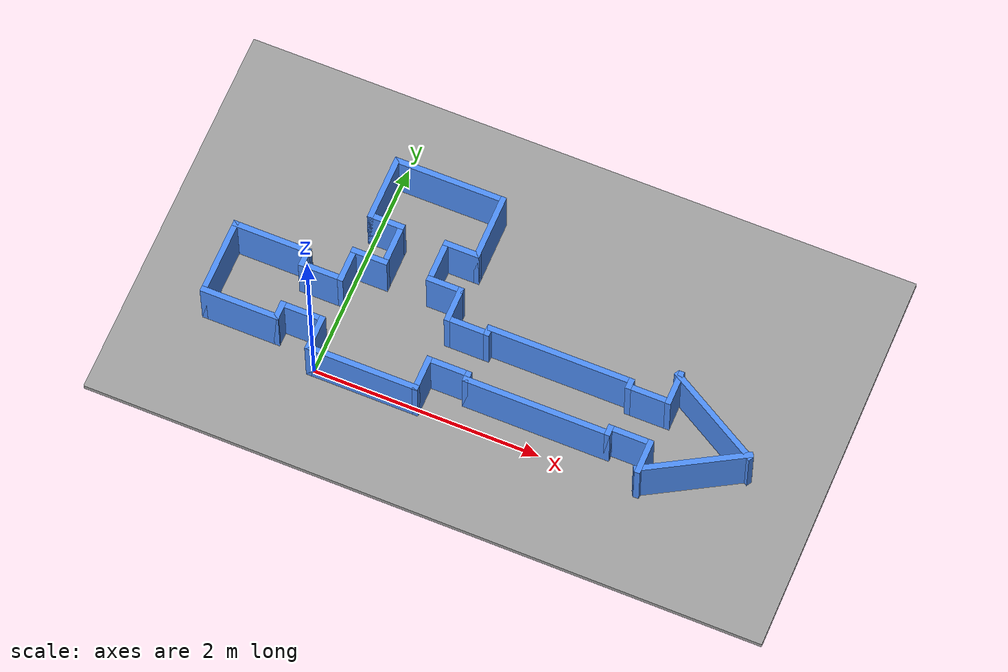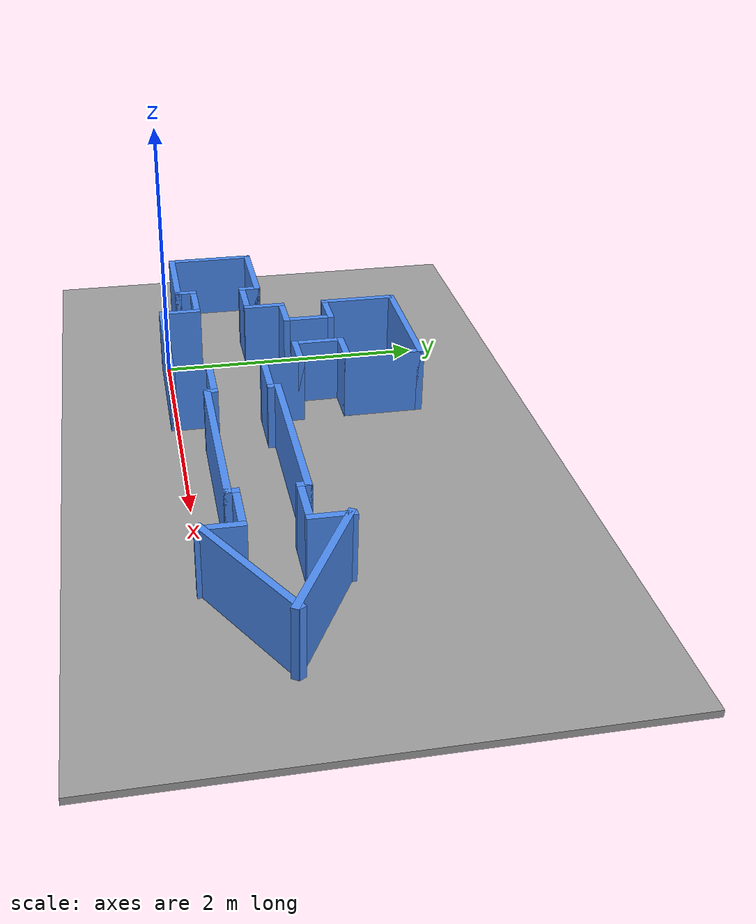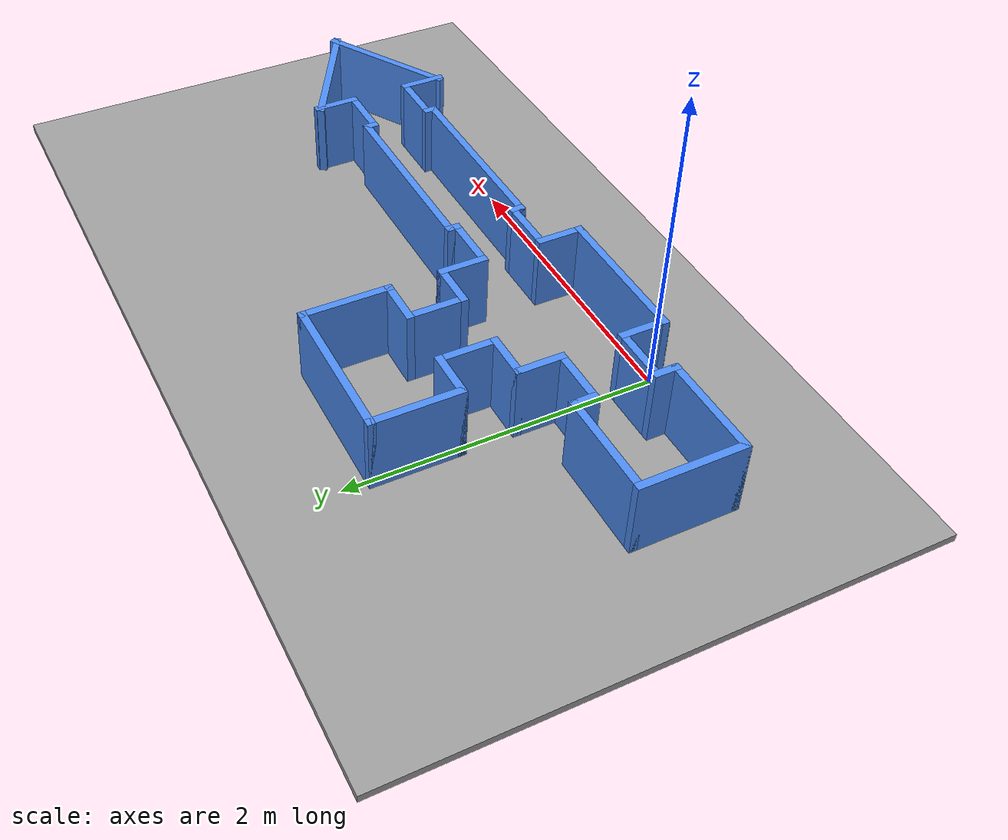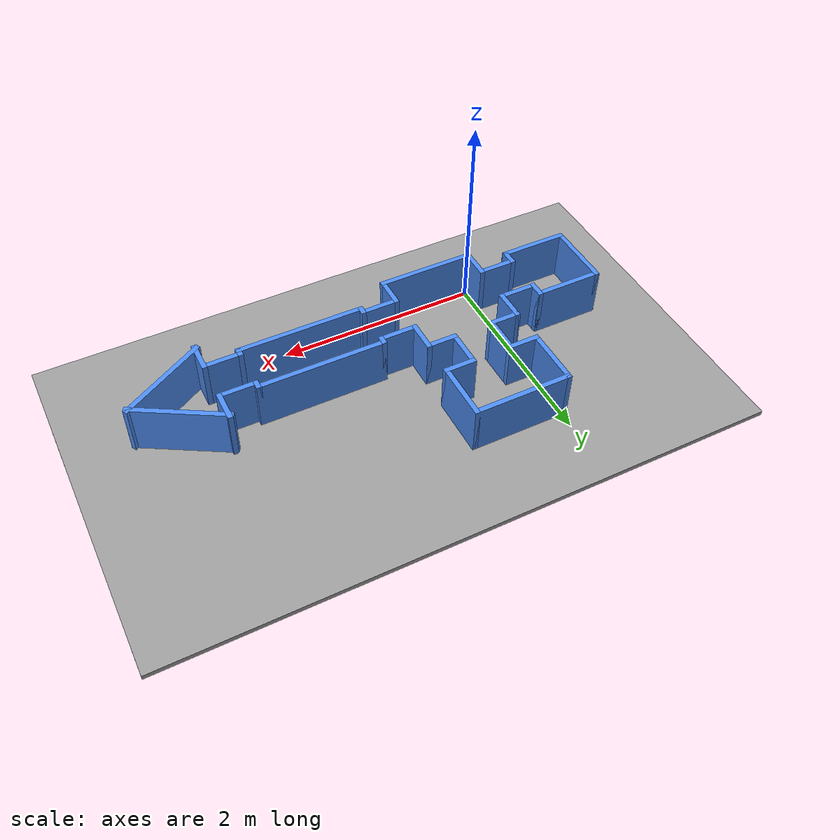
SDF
<sdf version="1.9">
 <world name="combined_rooms">
  <physics name="room_physics" type="ignored">
   <max_step_size>0.001</max_step_size>
   <real_time_factor>1.0</real_time_factor>
  </physics>
  <plugin filename="gz-sim-physics-system" name="gz::sim::systems::Physics"/>
  <plugin filename="gz-sim-user-commands-system" name="gz::sim::systems::UserCommands"/>
  <plugin filename="gz-sim-scene-broadcaster-system" name="gz::sim::systems::SceneBroadcaster"/>
  <plugin filename="gz-sim-sensors-system" name="gz::sim::systems::Sensors">
   <render_engine>ogre2</render_engine>
  </plugin>
  <gravity>0 0 -9.8</gravity>
  <scene><ambient>0.7 0.7 0.7 1</ambient><background>0.8 0.85 0.9 1</background><shadows>true</shadows></scene>
  <light type="directional" name="sun">
   <pose>1.5 0.9 5 0 0 0</pose>
   <diffuse>0.9 0.9 0.9 1</diffuse>
   <specular>0.2 0.2 0.2 1</specular>
   <direction>-0.5 0.2 -0.9</direction>
  </light>
  <model name="ground">
   <static>true</static>
   <link name="ground_link">
    <pose>1.3 0.9 -0.025 0 0 0</pose>
    <collision name="ground_collision"><geometry><box><size>6.0 3.5 0.05</size></box></geometry></collision>
    <visual name="ground_visual">
     <geometry><box><size>6.0 3.5 0.05</size></box></geometry>
     <material><ambient>0.5 0.5 0.5 1</ambient><diffuse>0.62 0.62 0.62 1</diffuse></material>
    </visual>
   </link>
  </model>
  <model name="connected_room_walls">
   <static>true</static>
   <link name="small_square_0">
    <pose>-0.7000 0.1250 0.25 0 0 0.000000</pose>
    <collision name="collision"><geometry><box><size>0.7000 0.05 0.5</size></box></geometry></collision>
    <visual name="visual">
     <geometry><box><size>0.7000 0.05 0.5</size></box></geometry>
     <material><ambient>0.25 0.45 0.85 1</ambient><diffuse>0.30 0.55 0.95 1</diffuse></material>
    </visual>
   </link>
   <link name="small_square_1a">
    <pose>-0.3750 0.1875 0.25 0 0 1.570796</pose>
    <collision name="collision"><geometry><box><size>0.1750 0.05 0.5</size></box></geometry></collision>
    <visual name="visual">
     <geometry><box><size>0.1750 0.05 0.5</size></box></geometry>
     <material><ambient>0.25 0.45 0.85 1</ambient><diffuse>0.30 0.55 0.95 1</diffuse></material>
    </visual>
   </link>
   <link name="small_square_1b">
    <pose>-0.3750 0.7125 0.25 0 0 1.570796</pose>
    <collision name="collision"><geometry><box><size>0.1750 0.05 0.5</size></box></geometry></collision>
    <visual name="visual">
     <geometry><box><size>0.1750 0.05 0.5</size></box></geometry>
     <material><ambient>0.25 0.45 0.85 1</ambient><diffuse>0.30 0.55 0.95 1</diffuse></material>
    </visual>
   </link>
   <link name="small_square_2">
    <pose>-0.7000 0.7750 0.25 0 0 3.141593</pose>
    <collision name="collision"><geometry><box><size>0.7000 0.05 0.5</size></box></geometry></collision>
    <visual name="visual">
     <geometry><box><size>0.7000 0.05 0.5</size></box></geometry>
     <material><ambient>0.25 0.45 0.85 1</ambient><diffuse>0.30 0.55 0.95 1</diffuse></material>
    </visual>
   </link>
   <link name="small_square_3">
    <pose>-1.0250 0.4500 0.25 0 0 -1.570796</pose>
    <collision name="collision"><geometry><box><size>0.7000 0.05 0.5</size></box></geometry></collision>
    <visual name="visual">
     <geometry><box><size>0.7000 0.05 0.5</size></box></geometry>
     <material><ambient>0.25 0.45 0.85 1</ambient><diffuse>0.30 0.55 0.95 1</diffuse></material>
    </visual>
   </link>
   <link name="large_square_0">
    <pose>0.4500 -0.0250 0.25 0 0 0.000000</pose>
    <collision name="collision"><geometry><box><size>1.0000 0.05 0.5</size></box></geometry></collision>
    <visual name="visual">
     <geometry><box><size>1.0000 0.05 0.5</size></box></geometry>
     <material><ambient>0.25 0.45 0.85 1</ambient><diffuse>0.30 0.55 0.95 1</diffuse></material>
    </visual>
   </link>
   <link name="large_square_1a">
    <pose>0.9250 0.1125 0.25 0 0 1.570796</pose>
    <collision name="collision"><geometry><box><size>0.3250 0.05 0.5</size></box></geometry></collision>
    <visual name="visual">
     <geometry><box><size>0.3250 0.05 0.5</size></box></geometry>
     <material><ambient>0.25 0.45 0.85 1</ambient><diffuse>0.30 0.55 0.95 1</diffuse></material>
    </visual>
   </link>
   <link name="large_square_1b">
    <pose>0.9250 0.7875 0.25 0 0 1.570796</pose>
    <collision name="collision"><geometry><box><size>0.3250 0.05 0.5</size></box></geometry></collision>
    <visual name="visual">
     <geometry><box><size>0.3250 0.05 0.5</size></box></geometry>
     <material><ambient>0.25 0.45 0.85 1</ambient><diffuse>0.30 0.55 0.95 1</diffuse></material>
    </visual>
   </link>
   <link name="large_square_2a">
    <pose>0.7875 0.9250 0.25 0 0 3.141593</pose>
    <collision name="collision"><geometry><box><size>0.3250 0.05 0.5</size></box></geometry></collision>
    <visual name="visual">
     <geometry><box><size>0.3250 0.05 0.5</size></box></geometry>
     <material><ambient>0.25 0.45 0.85 1</ambient><diffuse>0.30 0.55 0.95 1</diffuse></material>
    </visual>
   </link>
   <link name="large_square_2b">
    <pose>0.1125 0.9250 0.25 0 0 3.141593</pose>
    <collision name="collision"><geometry><box><size>0.3250 0.05 0.5</size></box></geometry></collision>
    <visual name="visual">
     <geometry><box><size>0.3250 0.05 0.5</size></box></geometry>
     <material><ambient>0.25 0.45 0.85 1</ambient><diffuse>0.30 0.55 0.95 1</diffuse></material>
    </visual>
   </link>
   <link name="large_square_3a">
    <pose>-0.0250 0.7875 0.25 0 0 -1.570796</pose>
    <collision name="collision"><geometry><box><size>0.3250 0.05 0.5</size></box></geometry></collision>
    <visual name="visual">
     <geometry><box><size>0.3250 0.05 0.5</size></box></geometry>
     <material><ambient>0.25 0.45 0.85 1</ambient><diffuse>0.30 0.55 0.95 1</diffuse></material>
    </visual>
   </link>
   <link name="large_square_3b">
    <pose>-0.0250 0.1125 0.25 0 0 -1.570796</pose>
    <collision name="collision"><geometry><box><size>0.3250 0.05 0.5</size></box></geometry></collision>
    <visual name="visual">
     <geometry><box><size>0.3250 0.05 0.5</size></box></geometry>
     <material><ambient>0.25 0.45 0.85 1</ambient><diffuse>0.30 0.55 0.95 1</diffuse></material>
    </visual>
   </link>
   <link name="rectangle_0a">
    <pose>0.1125 1.2750 0.25 0 0 0.000000</pose>
    <collision name="collision"><geometry><box><size>0.3250 0.05 0.5</size></box></geometry></collision>
    <visual name="visual">
     <geometry><box><size>0.3250 0.05 0.5</size></box></geometry>
     <material><ambient>0.25 0.45 0.85 1</ambient><diffuse>0.30 0.55 0.95 1</diffuse></material>
    </visual>
   </link>
   <link name="rectangle_0b">
    <pose>0.7875 1.2750 0.25 0 0 0.000000</pose>
    <collision name="collision"><geometry><box><size>0.3250 0.05 0.5</size></box></geometry></collision>
    <visual name="visual">
     <geometry><box><size>0.3250 0.05 0.5</size></box></geometry>
     <material><ambient>0.25 0.45 0.85 1</ambient><diffuse>0.30 0.55 0.95 1</diffuse></material>
    </visual>
   </link>
   <link name="rectangle_1">
    <pose>0.9250 1.5500 0.25 0 0 1.570796</pose>
    <collision name="collision"><geometry><box><size>0.6000 0.05 0.5</size></box></geometry></collision>
    <visual name="visual">
     <geometry><box><size>0.6000 0.05 0.5</size></box></geometry>
     <material><ambient>0.25 0.45 0.85 1</ambient><diffuse>0.30 0.55 0.95 1</diffuse></material>
    </visual>
   </link>
   <link name="rectangle_2">
    <pose>0.4500 1.8250 0.25 0 0 3.141593</pose>
    <collision name="collision"><geometry><box><size>1.0000 0.05 0.5</size></box></geometry></collision>
    <visual name="visual">
     <geometry><box><size>1.0000 0.05 0.5</size></box></geometry>
     <material><ambient>0.25 0.45 0.85 1</ambient><diffuse>0.30 0.55 0.95 1</diffuse></material>
    </visual>
   </link>
   <link name="rectangle_3">
    <pose>-0.0250 1.5500 0.25 0 0 -1.570796</pose>
    <collision name="collision"><geometry><box><size>0.6000 0.05 0.5</size></box></geometry></collision>
    <visual name="visual">
     <geometry><box><size>0.6000 0.05 0.5</size></box></geometry>
     <material><ambient>0.25 0.45 0.85 1</ambient><diffuse>0.30 0.55 0.95 1</diffuse></material>
    </visual>
   </link>
   <link name="hallway_0">
    <pose>1.9000 0.2000 0.25 0 0 0.000000</pose>
    <collision name="collision"><geometry><box><size>1.3000 0.05 0.5</size></box></geometry></collision>
    <visual name="visual">
     <geometry><box><size>1.3000 0.05 0.5</size></box></geometry>
     <material><ambient>0.25 0.45 0.85 1</ambient><diffuse>0.30 0.55 0.95 1</diffuse></material>
    </visual>
   </link>
   <link name="hallway_1a">
    <pose>2.5250 0.2250 0.25 0 0 1.570796</pose>
    <collision name="collision"><geometry><box><size>0.1000 0.05 0.5</size></box></geometry></collision>
    <visual name="visual">
     <geometry><box><size>0.1000 0.05 0.5</size></box></geometry>
     <material><ambient>0.25 0.45 0.85 1</ambient><diffuse>0.30 0.55 0.95 1</diffuse></material>
    </visual>
   </link>
   <link name="hallway_1b">
    <pose>2.5250 0.6750 0.25 0 0 1.570796</pose>
    <collision name="collision"><geometry><box><size>0.1000 0.05 0.5</size></box></geometry></collision>
    <visual name="visual">
     <geometry><box><size>0.1000 0.05 0.5</size></box></geometry>
     <material><ambient>0.25 0.45 0.85 1</ambient><diffuse>0.30 0.55 0.95 1</diffuse></material>
    </visual>
   </link>
   <link name="hallway_2">
    <pose>1.9000 0.7000 0.25 0 0 3.141593</pose>
    <collision name="collision"><geometry><box><size>1.3000 0.05 0.5</size></box></geometry></collision>
    <visual name="visual">
     <geometry><box><size>1.3000 0.05 0.5</size></box></geometry>
     <material><ambient>0.25 0.45 0.85 1</ambient><diffuse>0.30 0.55 0.95 1</diffuse></material>
    </visual>
   </link>
   <link name="hallway_3a">
    <pose>1.2750 0.6750 0.25 0 0 -1.570796</pose>
    <collision name="collision"><geometry><box><size>0.1000 0.05 0.5</size></box></geometry></collision>
    <visual name="visual">
     <geometry><box><size>0.1000 0.05 0.5</size></box></geometry>
     <material><ambient>0.25 0.45 0.85 1</ambient><diffuse>0.30 0.55 0.95 1</diffuse></material>
    </visual>
   </link>
   <link name="hallway_3b">
    <pose>1.2750 0.2250 0.25 0 0 -1.570796</pose>
    <collision name="collision"><geometry><box><size>0.1000 0.05 0.5</size></box></geometry></collision>
    <visual name="visual">
     <geometry><box><size>0.1000 0.05 0.5</size></box></geometry>
     <material><ambient>0.25 0.45 0.85 1</ambient><diffuse>0.30 0.55 0.95 1</diffuse></material>
    </visual>
   </link>
   <link name="triangle_0">
    <pose>3.2589 0.2283 0.25 0 0 0.523599</pose>
    <collision name="collision"><geometry><box><size>0.9800 0.05 0.5</size></box></geometry></collision>
    <visual name="visual">
     <geometry><box><size>0.9800 0.05 0.5</size></box></geometry>
     <material><ambient>0.25 0.45 0.85 1</ambient><diffuse>0.30 0.55 0.95 1</diffuse></material>
    </visual>
   </link>
   <link name="triangle_1">
    <pose>3.2589 0.6717 0.25 0 0 2.617994</pose>
    <collision name="collision"><geometry><box><size>0.9800 0.05 0.5</size></box></geometry></collision>
    <visual name="visual">
     <geometry><box><size>0.9800 0.05 0.5</size></box></geometry>
     <material><ambient>0.25 0.45 0.85 1</ambient><diffuse>0.30 0.55 0.95 1</diffuse></material>
    </visual>
   </link>
   <link name="triangle_2a">
    <pose>2.8750 0.7825 0.25 0 0 -1.570796</pose>
    <collision name="collision"><geometry><box><size>0.3150 0.05 0.5</size></box></geometry></collision>
    <visual name="visual">
     <geometry><box><size>0.3150 0.05 0.5</size></box></geometry>
     <material><ambient>0.25 0.45 0.85 1</ambient><diffuse>0.30 0.55 0.95 1</diffuse></material>
    </visual>
   </link>
   <link name="triangle_2b">
    <pose>2.8750 0.1175 0.25 0 0 -1.570796</pose>
    <collision name="collision"><geometry><box><size>0.3150 0.05 0.5</size></box></geometry></collision>
    <visual name="visual">
     <geometry><box><size>0.3150 0.05 0.5</size></box></geometry>
     <material><ambient>0.25 0.45 0.85 1</ambient><diffuse>0.30 0.55 0.95 1</diffuse></material>
    </visual>
   </link>
   <link name="corridor_0_left">
    <pose>-0.2000 0.6500 0.25 0 0 3.141593</pose>
    <collision name="collision"><geometry><box><size>0.3000 0.05 0.5</size></box></geometry></collision>
    <visual name="visual">
     <geometry><box><size>0.3000 0.05 0.5</size></box></geometry>
     <material><ambient>0.25 0.45 0.85 1</ambient><diffuse>0.30 0.55 0.95 1</diffuse></material>
    </visual>
   </link>
   <link name="corridor_0_right">
    <pose>-0.2000 0.2500 0.25 0 0 0.000000</pose>
    <collision name="collision"><geometry><box><size>0.3000 0.05 0.5</size></box></geometry></collision>
    <visual name="visual">
     <geometry><box><size>0.3000 0.05 0.5</size></box></geometry>
     <material><ambient>0.25 0.45 0.85 1</ambient><diffuse>0.30 0.55 0.95 1</diffuse></material>
    </visual>
   </link>
   <link name="corridor_1_left">
    <pose>0.2500 1.1000 0.25 0 0 -1.570796</pose>
    <collision name="collision"><geometry><box><size>0.3000 0.05 0.5</size></box></geometry></collision>
    <visual name="visual">
     <geometry><box><size>0.3000 0.05 0.5</size></box></geometry>
     <material><ambient>0.25 0.45 0.85 1</ambient><diffuse>0.30 0.55 0.95 1</diffuse></material>
    </visual>
   </link>
   <link name="corridor_1_right">
    <pose>0.6500 1.1000 0.25 0 0 1.570796</pose>
    <collision name="collision"><geometry><box><size>0.3000 0.05 0.5</size></box></geometry></collision>
    <visual name="visual">
     <geometry><box><size>0.3000 0.05 0.5</size></box></geometry>
     <material><ambient>0.25 0.45 0.85 1</ambient><diffuse>0.30 0.55 0.95 1</diffuse></material>
    </visual>
   </link>
   <link name="corridor_2_left">
    <pose>1.1000 0.6500 0.25 0 0 3.141593</pose>
    <collision name="collision"><geometry><box><size>0.3000 0.05 0.5</size></box></geometry></collision>
    <visual name="visual">
     <geometry><box><size>0.3000 0.05 0.5</size></box></geometry>
     <material><ambient>0.25 0.45 0.85 1</ambient><diffuse>0.30 0.55 0.95 1</diffuse></material>
    </visual>
   </link>
   <link name="corridor_2_right">
    <pose>1.1000 0.2500 0.25 0 0 0.000000</pose>
    <collision name="collision"><geometry><box><size>0.3000 0.05 0.5</size></box></geometry></collision>
    <visual name="visual">
     <geometry><box><size>0.3000 0.05 0.5</size></box></geometry>
     <material><ambient>0.25 0.45 0.85 1</ambient><diffuse>0.30 0.55 0.95 1</diffuse></material>
    </visual>
   </link>
   <link name="corridor_3_left">
    <pose>2.7000 0.6500 0.25 0 0 3.141593</pose>
    <collision name="collision"><geometry><box><size>0.3000 0.05 0.5</size></box></geometry></collision>
    <visual name="visual">
     <geometry><box><size>0.3000 0.05 0.5</size></box></geometry>
     <material><ambient>0.25 0.45 0.85 1</ambient><diffuse>0.30 0.55 0.95 1</diffuse></material>
    </visual>
   </link>
   <link name="corridor_3_right">
    <pose>2.7000 0.2500 0.25 0 0 0.000000</pose>
    <collision name="collision"><geometry><box><size>0.3000 0.05 0.5</size></box></geometry></collision>
    <visual name="visual">
     <geometry><box><size>0.3000 0.05 0.5</size></box></geometry>
     <material><ambient>0.25 0.45 0.85 1</ambient><diffuse>0.30 0.55 0.95 1</diffuse></material>
    </visual>
   </link>
  </model>
 </world>
</sdf>
